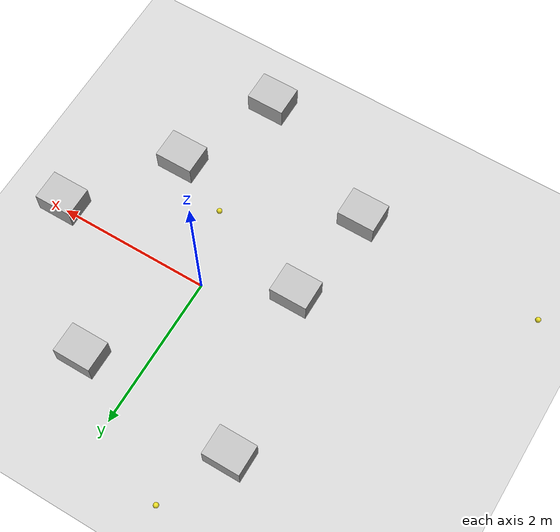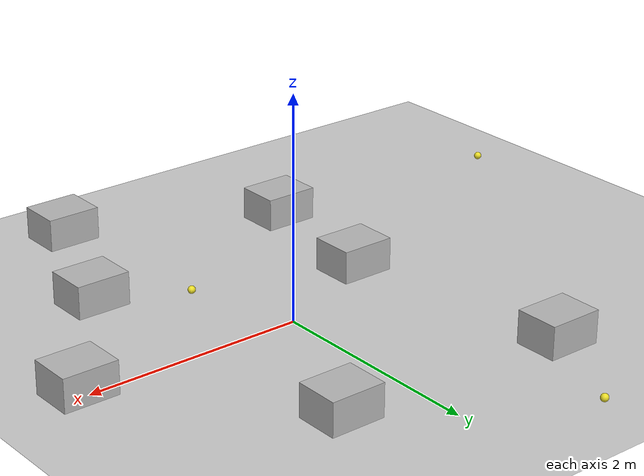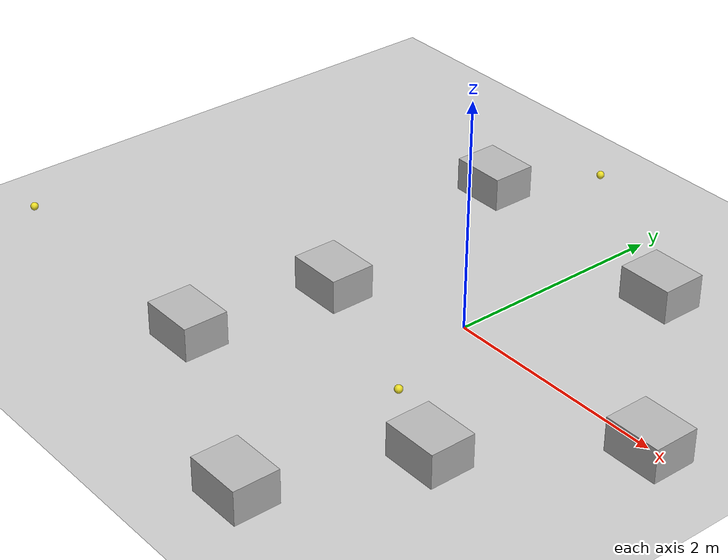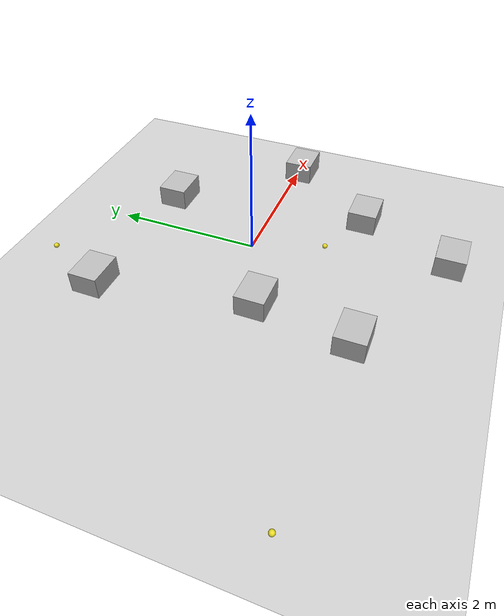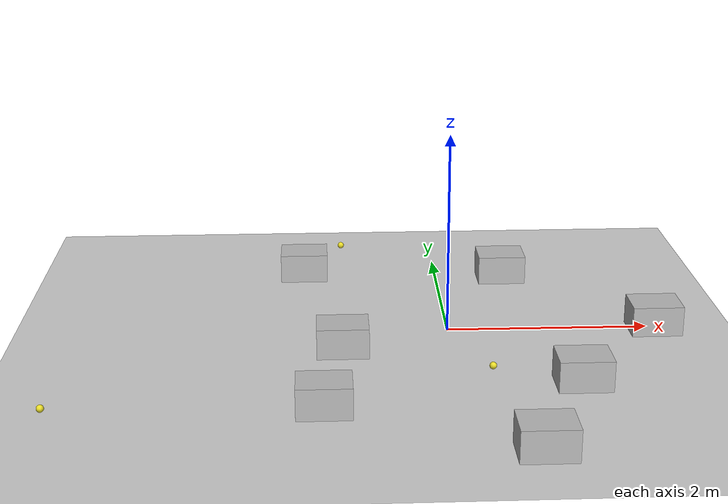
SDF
<sdf version="1.7">
 <world name="default">
  <light name="sun" type="directional">
   <pose>0 0 10 0 -0 0</pose>
   <diffuse>0.8 0.8 0.8 1</diffuse>
   <specular>0.2 0.2 0.2 1</specular>
   <attenuation>
    <range>1000</range>
    <constant>0.9</constant>
    <linear>0.01</linear>
    <quadratic>0.001</quadratic>
   </attenuation>
   <direction>-0.5 0.1 -0.9</direction>
   <spot><inner_angle>0</inner_angle><outer_angle>0</outer_angle><falloff>0</falloff></spot>
  </light>
  <model name="ground_plane">
   <static>1</static>
   <link name="link">
    <collision name="collision">
     <geometry><plane><normal>0 0 1</normal><size>100 100</size></plane></geometry>
     <surface>
      <contact><collide_bitmask>65535</collide_bitmask></contact>
      <friction><ode><mu>100</mu><mu2>50</mu2></ode></friction>
     </surface>
    </collision>
    <visual name="visual">
     <cast_shadows>0</cast_shadows>
     <geometry><plane><normal>0 0 1</normal><size>100 100</size></plane></geometry>
     <material>
      <script><uri>file://media/materials/scripts/gazebo.material</uri><name>Gazebo/Grey</name></script>
     </material>
    </visual>
   </link>
  </model>
  <gravity>0 0 -9.8</gravity>
  <magnetic_field>6e-06 2.3e-05 -4.2e-05</magnetic_field>
  <atmosphere type="adiabatic"/>
  <physics type="ode">
   <max_step_size>0.001</max_step_size>
   <real_time_factor>1</real_time_factor>
   <real_time_update_rate>1000</real_time_update_rate>
  </physics>
  <scene><ambient>0.4 0.4 0.4 1</ambient><background>0.7 0.7 0.7 1</background><shadows>1</shadows></scene>
  <audio><device>default</device></audio>
  <spherical_coordinates>
   <surface_model>EARTH_WGS84</surface_model>
   <latitude_deg>0</latitude_deg>
   <longitude_deg>0</longitude_deg>
   <elevation>0</elevation>
   <heading_deg>0</heading_deg>
  </spherical_coordinates>
  <model name="cardboard_box">
   <pose>2.05743 -0.064444 0.149 0 -0 0</pose>
   <link name="link">
    <inertial>
     <mass>2</mass>
     <inertia>
      <ixx>0.0416667</ixx>
      <ixy>0</ixy>
      <ixz>0</ixz>
      <iyy>0.0566667</iyy>
      <iyz>0</iyz>
      <izz>0.0683333</izz>
     </inertia>
    </inertial>
    <collision name="collision">
     <geometry><box><size>0.5 0.4 0.3</size></box></geometry>
     <surface>
      <friction><ode><mu>1</mu><mu2>1</mu2></ode></friction>
      <contact><ode><kp>1e+07</kp><kd>1</kd><min_depth>0.001</min_depth><max_vel>0.1</max_vel></ode></contact>
     </surface>
    </collision>
    <visual name="visual">
     <pose>0 0 -0.15 0 -0 0</pose>
     <geometry>
      <mesh><uri>model://cardboard_box/meshes/cardboard_box.dae</uri><scale>1.25932 1.00745 0.755591</scale></mesh>
     </geometry>
    </visual>
   </link>
  </model>
  <model name="cardboard_box_0">
   <pose>0.576148 -2.63728 0.149 0 -0 0</pose>
   <link name="link">
    <inertial>
     <mass>2</mass>
     <inertia>
      <ixx>0.0416667</ixx>
      <ixy>0</ixy>
      <ixz>0</ixz>
      <iyy>0.0566667</iyy>
      <iyz>0</iyz>
      <izz>0.0683333</izz>
     </inertia>
    </inertial>
    <collision name="collision">
     <geometry><box><size>0.5 0.4 0.3</size></box></geometry>
     <surface>
      <friction><ode><mu>1</mu><mu2>1</mu2></ode></friction>
      <contact><ode><kp>1e+07</kp><kd>1</kd><min_depth>0.001</min_depth><max_vel>0.1</max_vel></ode></contact>
     </surface>
    </collision>
    <visual name="visual">
     <pose>0 0 -0.15 0 -0 0</pose>
     <geometry>
      <mesh><uri>model://cardboard_box/meshes/cardboard_box.dae</uri><scale>1.25932 1.00745 0.755591</scale></mesh>
     </geometry>
    </visual>
   </link>
  </model>
  <model name="cardboard_box_1">
   <pose>-1.0523 -0.478452 0.149 0 -0 0</pose>
   <link name="link">
    <inertial>
     <mass>2</mass>
     <inertia>
      <ixx>0.0416667</ixx>
      <ixy>0</ixy>
      <ixz>0</ixz>
      <iyy>0.0566667</iyy>
      <iyz>0</iyz>
      <izz>0.0683333</izz>
     </inertia>
    </inertial>
    <collision name="collision">
     <geometry><box><size>0.5 0.4 0.3</size></box></geometry>
     <surface>
      <friction><ode><mu>1</mu><mu2>1</mu2></ode></friction>
      <contact><ode><kp>1e+07</kp><kd>1</kd><min_depth>0.001</min_depth><max_vel>0.1</max_vel></ode></contact>
     </surface>
    </collision>
    <visual name="visual">
     <pose>0 0 -0.15 0 -0 0</pose>
     <geometry>
      <mesh><uri>model://cardboard_box/meshes/cardboard_box.dae</uri><scale>1.25932 1.00745 0.755591</scale></mesh>
     </geometry>
    </visual>
   </link>
  </model>
  <model name="cardboard_box_2">
   <pose>0.70586 1.46905 0.149 0 -0 0</pose>
   <link name="link">
    <inertial>
     <mass>2</mass>
     <inertia>
      <ixx>0.0416667</ixx>
      <ixy>0</ixy>
      <ixz>0</ixz>
      <iyy>0.0566667</iyy>
      <iyz>0</iyz>
      <izz>0.0683333</izz>
     </inertia>
    </inertial>
    <collision name="collision">
     <geometry><box><size>0.5 0.4 0.3</size></box></geometry>
     <surface>
      <friction><ode><mu>1</mu><mu2>1</mu2></ode></friction>
      <contact><ode><kp>1e+07</kp><kd>1</kd><min_depth>0.001</min_depth><max_vel>0.1</max_vel></ode></contact>
     </surface>
    </collision>
    <visual name="visual">
     <pose>0 0 -0.15 0 -0 0</pose>
     <geometry>
      <mesh><uri>model://cardboard_box/meshes/cardboard_box.dae</uri><scale>1.25932 1.00745 0.755591</scale></mesh>
     </geometry>
    </visual>
   </link>
  </model>
  <model name="cardboard_box_3">
   <pose>1.11757 -1.32687 0.149 0 -0 0</pose>
   <link name="link">
    <inertial>
     <mass>2</mass>
     <inertia>
      <ixx>0.0416667</ixx>
      <ixy>0</ixy>
      <ixz>0</ixz>
      <iyy>0.0566667</iyy>
      <iyz>0</iyz>
      <izz>0.0683333</izz>
     </inertia>
    </inertial>
    <collision name="collision">
     <geometry><box><size>0.5 0.4 0.3</size></box></geometry>
     <surface>
      <friction><ode><mu>1</mu><mu2>1</mu2></ode></friction>
      <contact><ode><kp>1e+07</kp><kd>1</kd><min_depth>0.001</min_depth><max_vel>0.1</max_vel></ode></contact>
     </surface>
    </collision>
    <visual name="visual">
     <pose>0 0 -0.15 0 -0 0</pose>
     <geometry>
      <mesh><uri>model://cardboard_box/meshes/cardboard_box.dae</uri><scale>1.25932 1.00745 0.755591</scale></mesh>
     </geometry>
    </visual>
   </link>
  </model>
  <model name="cardboard_box_4">
   <pose>-1.4325 1.62452 0.149 0 -0 0</pose>
   <link name="link">
    <inertial>
     <mass>2</mass>
     <inertia>
      <ixx>0.0416667</ixx>
      <ixy>0</ixy>
      <ixz>0</ixz>
      <iyy>0.0566667</iyy>
      <iyz>0</iyz>
      <izz>0.0683333</izz>
     </inertia>
    </inertial>
    <collision name="collision">
     <geometry><box><size>0.5 0.4 0.3</size></box></geometry>
     <surface>
      <friction><ode><mu>1</mu><mu2>1</mu2></ode></friction>
      <contact><ode><kp>1e+07</kp><kd>1</kd><min_depth>0.001</min_depth><max_vel>0.1</max_vel></ode></contact>
     </surface>
    </collision>
    <visual name="visual">
     <pose>0 0 -0.15 0 -0 0</pose>
     <geometry>
      <mesh><uri>model://cardboard_box/meshes/cardboard_box.dae</uri><scale>1.25932 1.00745 0.755591</scale></mesh>
     </geometry>
    </visual>
   </link>
  </model>
  <model name="cardboard_box_5">
   <pose>-1.23832 -1.77852 0.149 0 -0 0</pose>
   <link name="link">
    <inertial>
     <mass>2</mass>
     <inertia>
      <ixx>0.0416667</ixx>
      <ixy>0</ixy>
      <ixz>0</ixz>
      <iyy>0.0566667</iyy>
      <iyz>0</iyz>
      <izz>0.0683333</izz>
     </inertia>
    </inertial>
    <collision name="collision">
     <geometry><box><size>0.5 0.4 0.3</size></box></geometry>
     <surface>
      <friction><ode><mu>1</mu><mu2>1</mu2></ode></friction>
      <contact><ode><kp>1e+07</kp><kd>1</kd><min_depth>0.001</min_depth><max_vel>0.1</max_vel></ode></contact>
     </surface>
    </collision>
    <visual name="visual">
     <pose>0 0 -0.15 0 -0 0</pose>
     <geometry>
      <mesh><uri>model://cardboard_box/meshes/cardboard_box.dae</uri><scale>1.25932 1.00745 0.755591</scale></mesh>
     </geometry>
    </visual>
   </link>
  </model>
  <model name="tennis_ball">
   <link name="link">
    <inertial>
     <mass>1</mass>
     <inertia><ixx>0.1</ixx><ixy>0</ixy><ixz>0</ixz><iyy>0.1</iyy><iyz>0</iyz><izz>0.1</izz></inertia>
    </inertial>
    <visual name="visual">
     <geometry><sphere><radius>0.035</radius></sphere></geometry>
     <material>
      <script><name>Gazebo/Yellow</name><uri>file://media/materials/scripts/gazebo.material</uri></script>
      <shader type="pixel"><normal_map>__default__</normal_map></shader>
      <ambient>1 1 0 1</ambient>
      <diffuse>1 1 0 1</diffuse>
      <emissive>0 0 0 1</emissive>
     </material>
    </visual>
    <collision name="collision">
     <geometry><sphere><radius>0.035</radius></sphere></geometry>
     <surface>
      <friction>
       <ode><mu>1</mu><mu2>1</mu2><fdir1>0 0 0</fdir1><slip1>0</slip1><slip2>0</slip2></ode>
       <torsional>
        <coefficient>1</coefficient>
        <patch_radius>0</patch_radius>
        <surface_radius>0</surface_radius>
        <use_patch_radius>1</use_patch_radius>
        <ode><slip>0</slip></ode>
       </torsional>
      </friction>
      <bounce><restitution_coefficient>0</restitution_coefficient><threshold>1e+06</threshold></bounce>
      <contact>
       <collide_without_contact>0</collide_without_contact>
       <collide_without_contact_bitmask>1</collide_without_contact_bitmask>
       <collide_bitmask>1</collide_bitmask>
       <ode>
        <soft_cfm>0</soft_cfm>
        <soft_erp>0.2</soft_erp>
        <kp>1e+13</kp>
        <kd>1</kd>
        <max_vel>0.01</max_vel>
        <min_depth>0</min_depth>
       </ode>
       <bullet>
        <split_impulse>1</split_impulse>
        <split_impulse_penetration_threshold>-0.01</split_impulse_penetration_threshold>
        <soft_cfm>0</soft_cfm>
        <soft_erp>0.2</soft_erp>
        <kp>1e+13</kp>
        <kd>1</kd>
       </bullet>
      </contact>
     </surface>
    </collision>
   </link>
   <static>0</static>
   <pose>0.342094 -0.962835 0.035 0 -0 0</pose>
  </model>
  <model name="tennis_ball_clone">
   <link name="link">
    <inertial>
     <mass>1</mass>
     <inertia><ixx>0.1</ixx><ixy>0</ixy><ixz>0</ixz><iyy>0.1</iyy><iyz>0</iyz><izz>0.1</izz></inertia>
    </inertial>
    <visual name="visual">
     <geometry><sphere><radius>0.035</radius></sphere></geometry>
     <material>
      <script><name>Gazebo/Yellow</name><uri>file://media/materials/scripts/gazebo.material</uri></script>
      <shader type="pixel"><normal_map>__default__</normal_map></shader>
      <ambient>1 1 0 1</ambient>
      <diffuse>1 1 0 1</diffuse>
      <emissive>0 0 0 1</emissive>
     </material>
    </visual>
    <collision name="collision">
     <geometry><sphere><radius>0.035</radius></sphere></geometry>
     <surface>
      <friction>
       <ode><mu>1</mu><mu2>1</mu2><fdir1>0 0 0</fdir1><slip1>0</slip1><slip2>0</slip2></ode>
       <torsional>
        <coefficient>1</coefficient>
        <patch_radius>0</patch_radius>
        <surface_radius>0</surface_radius>
        <use_patch_radius>1</use_patch_radius>
        <ode><slip>0</slip></ode>
       </torsional>
      </friction>
      <bounce><restitution_coefficient>0</restitution_coefficient><threshold>1e+06</threshold></bounce>
      <contact>
       <collide_without_contact>0</collide_without_contact>
       <collide_without_contact_bitmask>1</collide_without_contact_bitmask>
       <collide_bitmask>1</collide_bitmask>
       <ode>
        <soft_cfm>0</soft_cfm>
        <soft_erp>0.2</soft_erp>
        <kp>1e+13</kp>
        <kd>1</kd>
        <max_vel>0.01</max_vel>
        <min_depth>0</min_depth>
       </ode>
       <bullet>
        <split_impulse>1</split_impulse>
        <split_impulse_penetration_threshold>-0.01</split_impulse_penetration_threshold>
        <soft_cfm>0</soft_cfm>
        <soft_erp>0.2</soft_erp>
        <kp>1e+13</kp>
        <kd>1</kd>
       </bullet>
      </contact>
     </surface>
    </collision>
   </link>
   <static>0</static>
   <pose>-3.70963 -1.68619 0.035 0 -0 0</pose>
  </model>
  <model name="tennis_ball_clone_0">
   <link name="link">
    <inertial>
     <mass>1</mass>
     <inertia><ixx>0.1</ixx><ixy>0</ixy><ixz>0</ixz><iyy>0.1</iyy><iyz>0</iyz><izz>0.1</izz></inertia>
    </inertial>
    <visual name="visual">
     <geometry><sphere><radius>0.035</radius></sphere></geometry>
     <material>
      <script><name>Gazebo/Yellow</name><uri>file://media/materials/scripts/gazebo.material</uri></script>
      <shader type="pixel"><normal_map>__default__</normal_map></shader>
      <ambient>1 1 0 1</ambient>
      <diffuse>1 1 0 1</diffuse>
      <emissive>0 0 0 1</emissive>
     </material>
    </visual>
    <collision name="collision">
     <geometry><sphere><radius>0.035</radius></sphere></geometry>
     <surface>
      <friction>
       <ode><mu>1</mu><mu2>1</mu2><fdir1>0 0 0</fdir1><slip1>0</slip1><slip2>0</slip2></ode>
       <torsional>
        <coefficient>1</coefficient>
        <patch_radius>0</patch_radius>
        <surface_radius>0</surface_radius>
        <use_patch_radius>1</use_patch_radius>
        <ode><slip>0</slip></ode>
       </torsional>
      </friction>
      <bounce><restitution_coefficient>0</restitution_coefficient><threshold>1e+06</threshold></bounce>
      <contact>
       <collide_without_contact>0</collide_without_contact>
       <collide_without_contact_bitmask>1</collide_without_contact_bitmask>
       <collide_bitmask>1</collide_bitmask>
       <ode>
        <soft_cfm>0</soft_cfm>
        <soft_erp>0.2</soft_erp>
        <kp>1e+13</kp>
        <kd>1</kd>
        <max_vel>0.01</max_vel>
        <min_depth>0</min_depth>
       </ode>
       <bullet>
        <split_impulse>1</split_impulse>
        <split_impulse_penetration_threshold>-0.01</split_impulse_penetration_threshold>
        <soft_cfm>0</soft_cfm>
        <soft_erp>0.2</soft_erp>
        <kp>1e+13</kp>
        <kd>1</kd>
       </bullet>
      </contact>
     </surface>
    </collision>
   </link>
   <static>0</static>
   <pose>-1.01724 2.53341 0.035 0 -0 0</pose>
  </model>
 </world>
</sdf>
